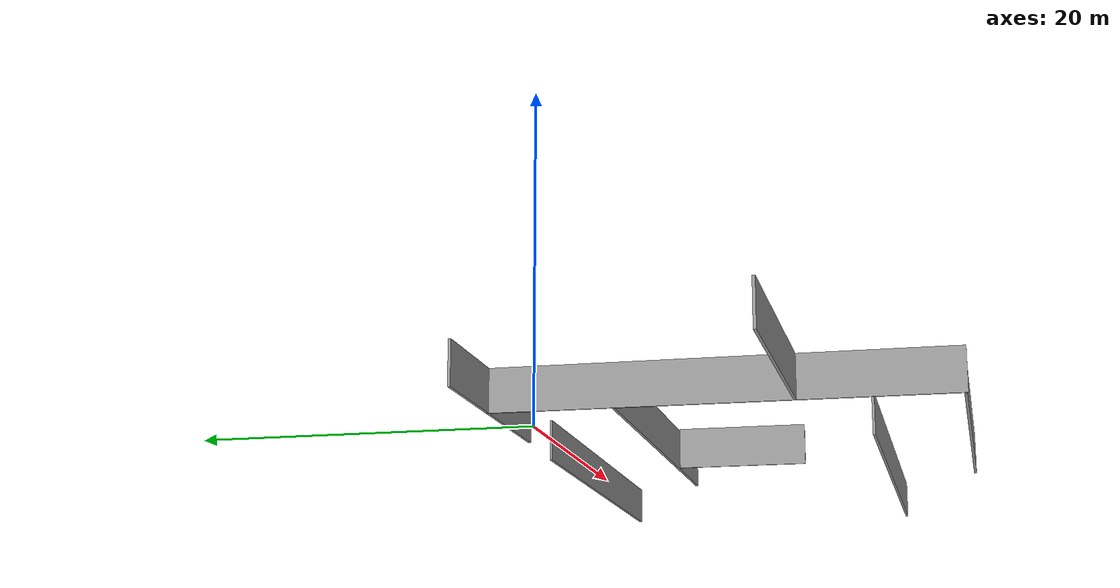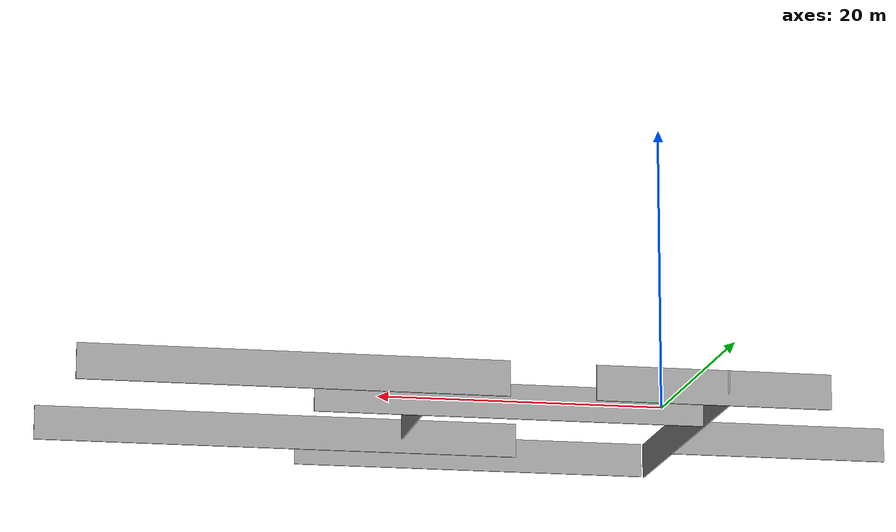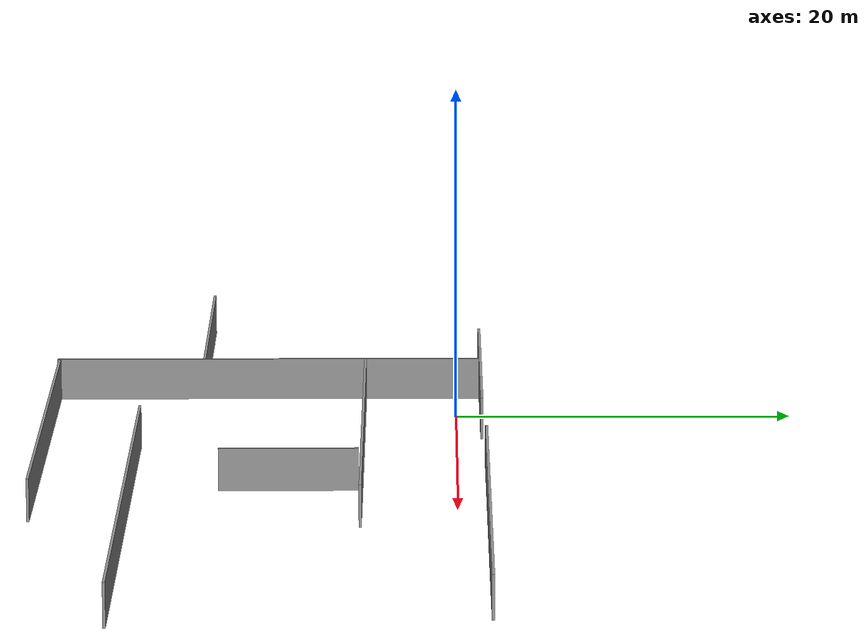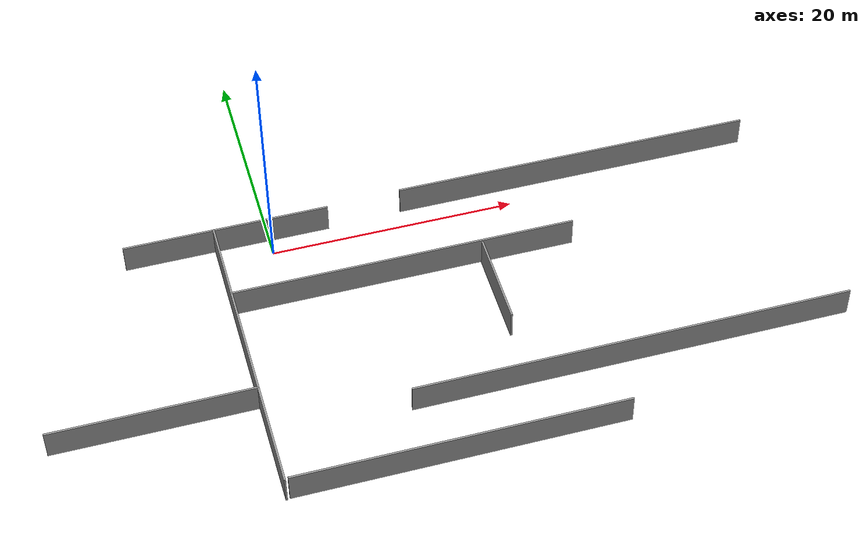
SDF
<?xml version='1.0'?>
<sdf version='1.7'>
  <model name='wall'>
    <pose>10.7333 -11.1904 0 0 -0 0</pose>
    <link name='Wall_11'>
      <collision name='Wall_11_Collision'>
        <geometry>
          <box>
            <size>25.75 0.15 2.5</size>
          </box>
        </geometry>
        <pose>0 0 1.25 0 -0 0</pose>
      </collision>
      <visual name='Wall_11_Visual'>
        <pose>0 0 1.25 0 -0 0</pose>
        <geometry>
          <box>
            <size>25.75 0.15 2.5</size>
          </box>
        </geometry>
        <material>
          <script>
            <uri>file://media/materials/scripts/gazebo.material</uri>
            <name>Gazebo/Grey</name>
          </script>
          <ambient>1 1 1 1</ambient>
        </material>
        <meta>
          <layer>0</layer>
        </meta>
      </visual>
      <pose>-15.1612 -0.100809 0 0 -0 -1.5708</pose>
    </link>
    <link name='Wall_13'>
      <collision name='Wall_13_Collision'>
        <geometry>
          <box>
            <size>26.5 0.15 2.5</size>
          </box>
        </geometry>
        <pose>0 0 1.25 0 -0 0</pose>
      </collision>
      <visual name='Wall_13_Visual'>
        <pose>0 0 1.25 0 -0 0</pose>
        <geometry>
          <box>
            <size>26.5 0.15 2.5</size>
          </box>
        </geometry>
        <material>
          <script>
            <uri>file://media/materials/scripts/gazebo.material</uri>
            <name>Gazebo/Grey</name>
          </script>
          <ambient>1 1 1 1</ambient>
        </material>
        <meta>
          <layer>0</layer>
        </meta>
      </visual>
      <pose>-1.65365 -12.8401 0 0 -0 0</pose>
    </link>
    <link name='Wall_15'>
      <collision name='Wall_15_Collision'>
        <geometry>
          <box>
            <size>35.5 0.15 2.5</size>
          </box>
        </geometry>
        <pose>0 0 1.25 0 -0 0</pose>
      </collision>
      <visual name='Wall_15_Visual'>
        <pose>0 0 1.25 0 -0 0</pose>
        <geometry>
          <box>
            <size>35.5 0.15 2.5</size>
          </box>
        </geometry>
        <material>
          <script>
            <uri>file://media/materials/scripts/gazebo.material</uri>
            <name>Gazebo/Grey</name>
          </script>
          <ambient>1 1 1 1</ambient>
        </material>
        <meta>
          <layer>0</layer>
        </meta>
      </visual>
      <pose>13.613 -7.39493 0 0 -0 0</pose>
    </link>
    <link name='Wall_17'>
      <collision name='Wall_17_Collision'>
        <geometry>
          <box>
            <size>16.25 0.15 2.5</size>
          </box>
        </geometry>
        <pose>0 0 1.25 0 -0 0</pose>
      </collision>
      <visual name='Wall_17_Visual'>
        <pose>0 0 1.25 0 -0 0</pose>
        <geometry>
          <box>
            <size>16.25 0.15 2.5</size>
          </box>
        </geometry>
        <material>
          <script>
            <uri>file://media/materials/scripts/gazebo.material</uri>
            <name>Gazebo/Grey</name>
          </script>
          <ambient>1 1 1 1</ambient>
        </material>
        <meta>
          <layer>0</layer>
        </meta>
      </visual>
      <pose>-23.238 -4.05356 0 0 -0 0</pose>
    </link>
    <link name='Wall_20'>
      <collision name='Wall_20_Collision'>
        <geometry>
          <box>
            <size>28 0.15 2.5</size>
          </box>
        </geometry>
        <pose>0 0 1.25 0 -0 0</pose>
      </collision>
      <visual name='Wall_20_Visual'>
        <pose>0 0 1.25 0 -0 0</pose>
        <geometry>
          <box>
            <size>28 0.15 2.5</size>
          </box>
        </geometry>
        <material>
          <script>
            <uri>file://media/materials/scripts/gazebo.material</uri>
            <name>Gazebo/Grey</name>
          </script>
          <ambient>1 1 1 1</ambient>
        </material>
        <meta>
          <layer>0</layer>
        </meta>
      </visual>
      <pose>-1.15115 5.72305 0 0 -0 0</pose>
    </link>
    <link name='Wall_22'>
      <collision name='Wall_22_Collision'>
        <geometry>
          <box>
            <size>8 0.15 2.5</size>
          </box>
        </geometry>
        <pose>0 0 1.25 0 -0 0</pose>
      </collision>
      <visual name='Wall_22_Visual'>
        <pose>0 0 1.25 0 -0 0</pose>
        <geometry>
          <box>
            <size>8 0.15 2.5</size>
          </box>
        </geometry>
        <material>
          <script>
            <uri>file://media/materials/scripts/gazebo.material</uri>
            <name>Gazebo/Grey</name>
          </script>
          <ambient>1 1 1 1</ambient>
        </material>
        <meta>
          <layer>0</layer>
        </meta>
      </visual>
      <pose>5.21959 1.55054 0 0 -0 -1.5708</pose>
    </link>
    <link name='Wall_24'>
      <collision name='Wall_24_Collision'>
        <geometry>
          <box>
            <size>29.75 0.15 2.5</size>
          </box>
        </geometry>
        <pose>0 0 1.25 0 -0 0</pose>
      </collision>
      <visual name='Wall_24_Visual'>
        <pose>0 0 1.25 0 -0 0</pose>
        <geometry>
          <box>
            <size>29.75 0.15 2.5</size>
          </box>
        </geometry>
        <material>
          <script>
            <uri>file://media/materials/scripts/gazebo.material</uri>
            <name>Gazebo/Grey</name>
          </script>
          <ambient>1 1 1 1</ambient>
        </material>
        <meta>
          <layer>0</layer>
        </meta>
      </visual>
      <pose>15.1932 12.9008 0 0 -0 0</pose>
    </link>
    <link name='Wall_9'>
      <collision name='Wall_9_Collision'>
        <geometry>
          <box>
            <size>16.75 0.15 2.5</size>
          </box>
        </geometry>
        <pose>0 0 1.25 0 -0 0</pose>
      </collision>
      <visual name='Wall_9_Visual'>
        <pose>0 0 1.25 0 -0 0</pose>
        <geometry>
          <box>
            <size>16.75 0.15 2.5</size>
          </box>
        </geometry>
        <material>
          <script>
            <uri>file://media/materials/scripts/gazebo.material</uri>
            <name>Gazebo/Grey</name>
          </script>
          <ambient>1 1 1 1</ambient>
        </material>
        <meta>
          <layer>0</layer>
        </meta>
      </visual>
      <pose>-14.1492 12.6992 0 0 -0 0</pose>
    </link>
    <static>1</static>
  </model>
</sdf>
